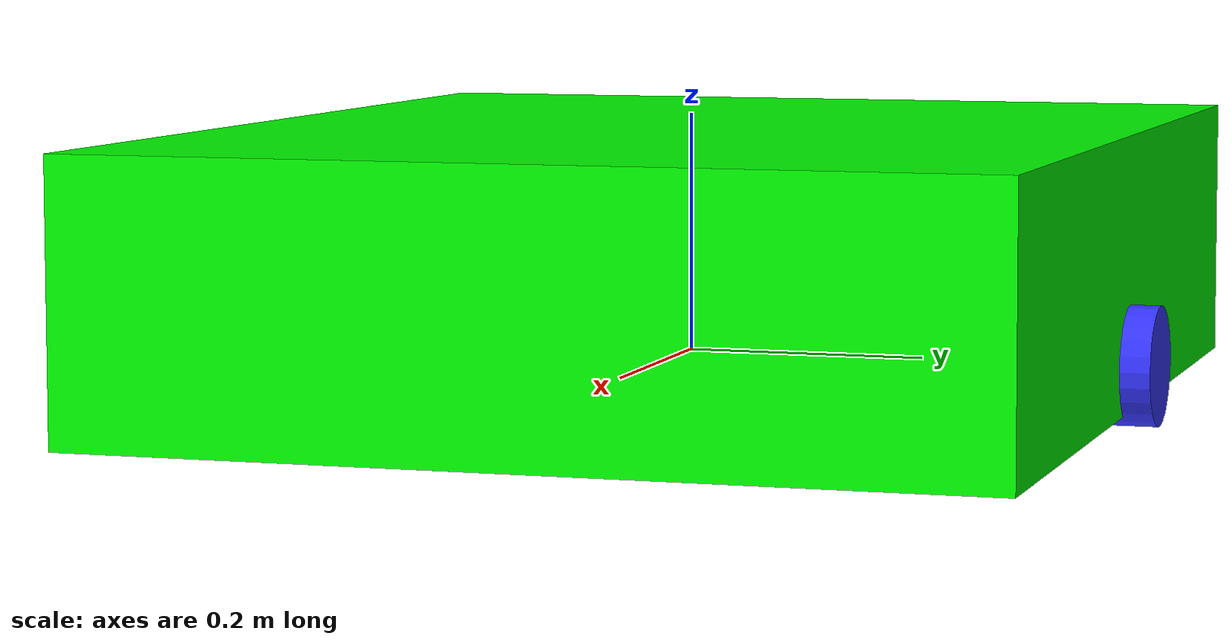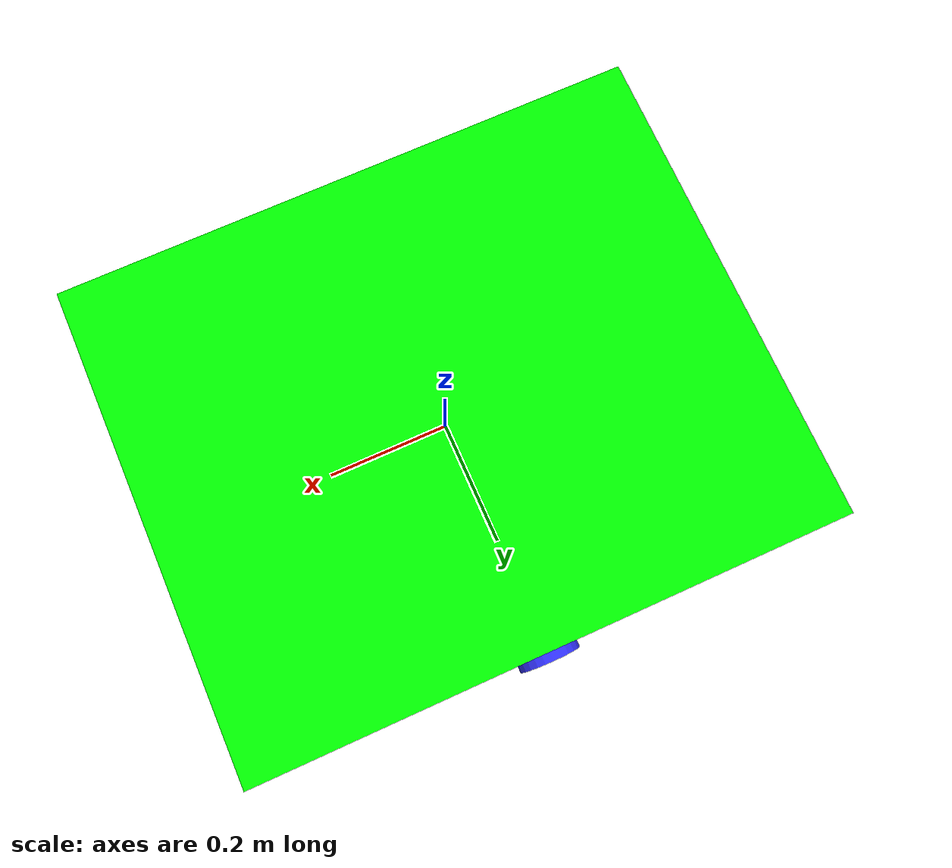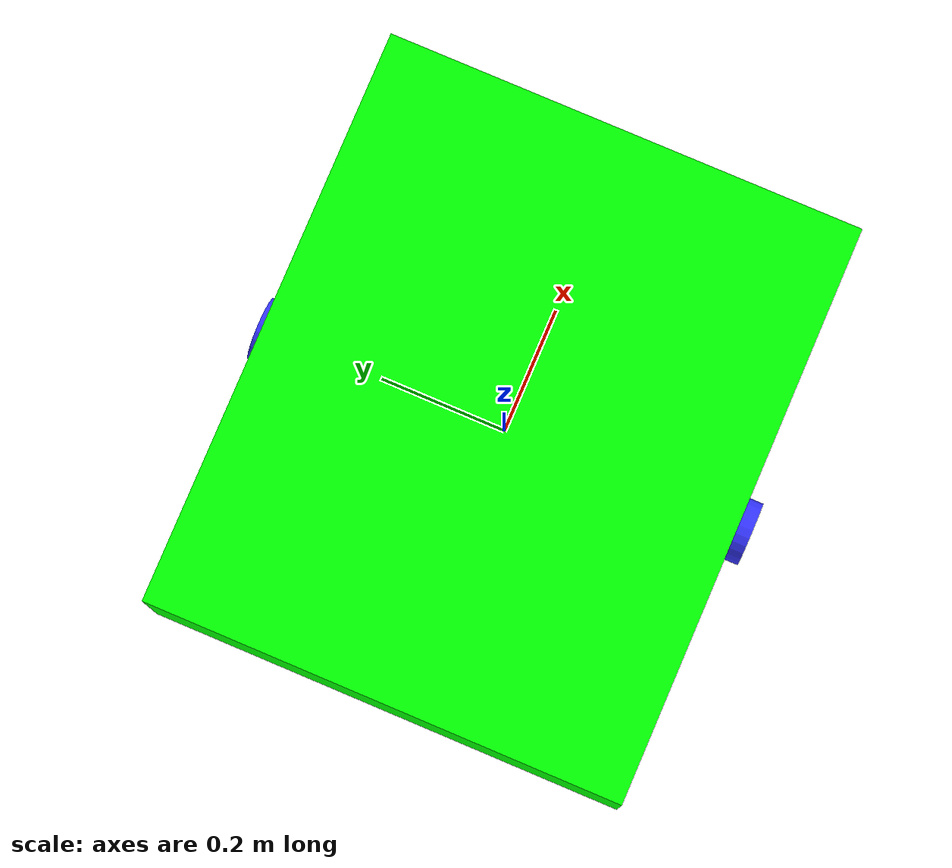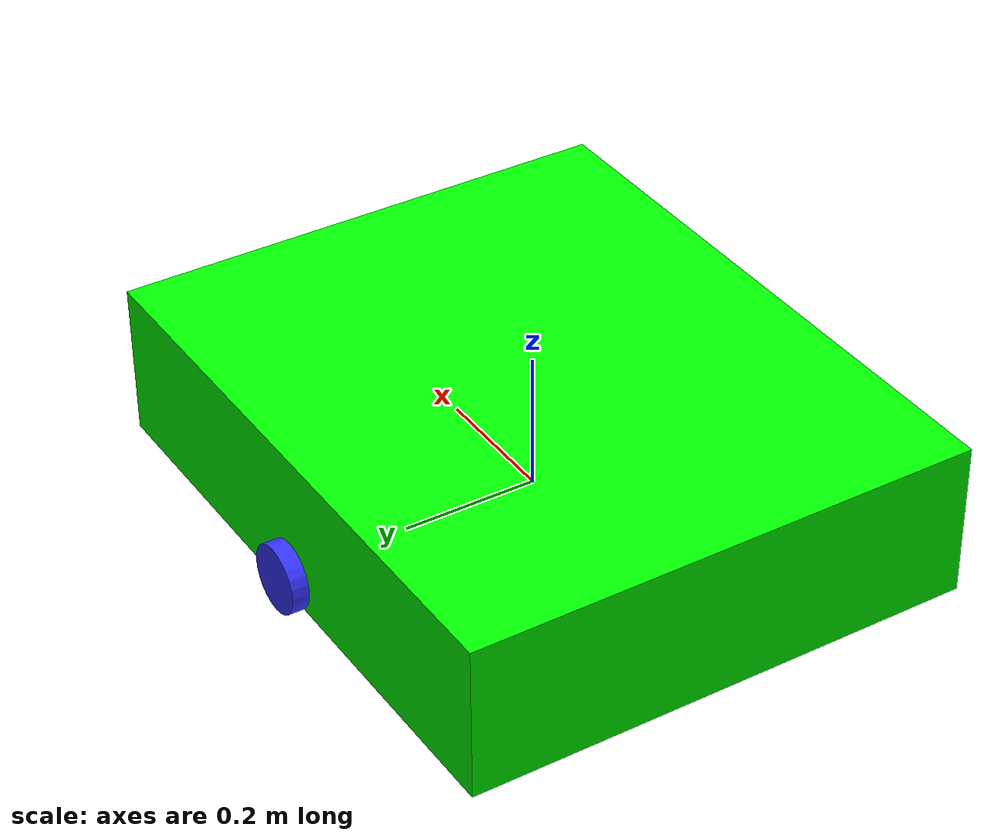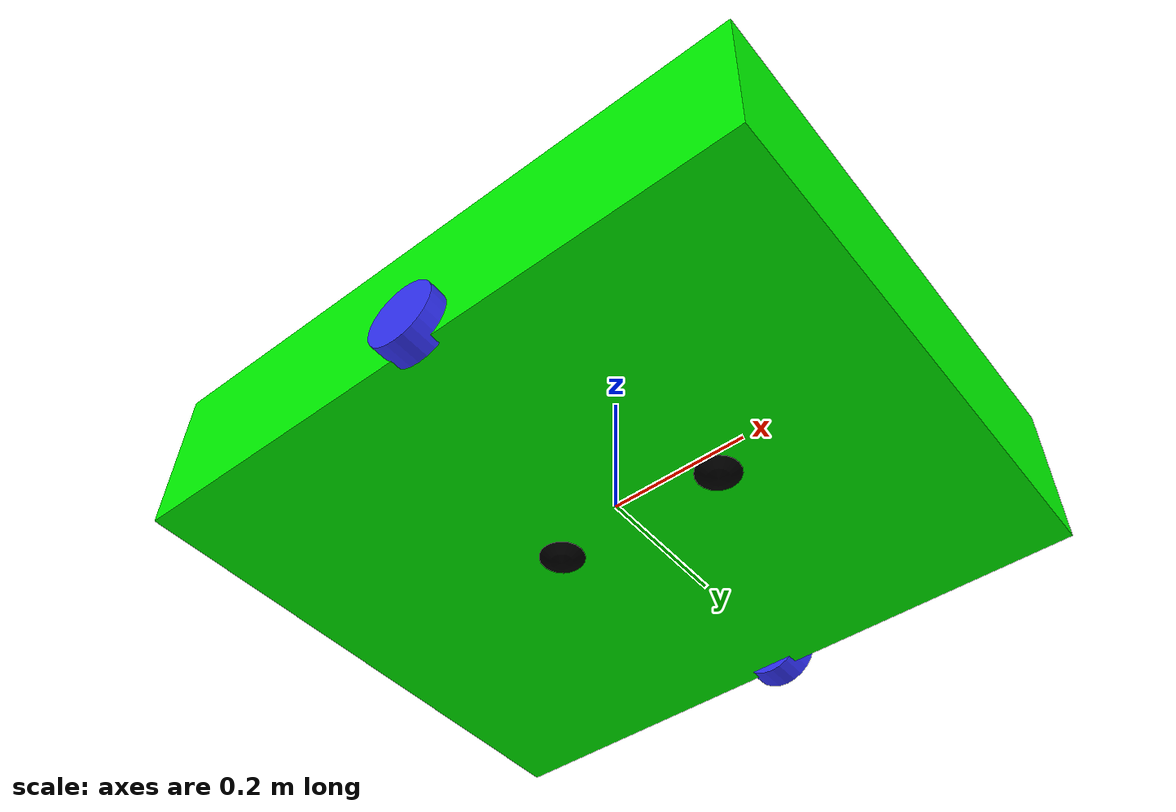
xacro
<?xml version="1.0"?>
<robot xmlns:xacro="http://www.ros.org/wiki/xacro" >

    <xacro:include filename="inertial_macros.xacro"/>

    <material name="white">
        <color rgba="1 1 1 1" />
    </material>

    <material name="orange">
        <color rgba="1 0.3 0.1 1"/>
    </material>

    <material name="blue">
        <color rgba="0.2 0.2 1 1"/>
    </material>

    <material name="black">
        <color rgba="0 0 0 1"/>
    </material>

    <material name="red">
        <color rgba="1 0 0 1"/>
    </material>

    <material name="green">
        <color rgba="0 1 0 1"/>
    </material>

    <!-- BASE LINK -->

    <link name="base_link">

    </link>

    <link name="base_footprint"/>
    <joint name="base_joint" type="fixed">
    <parent link="base_link"/>
    <child link ="base_footprint"/>
    <origin xyz="0 0 0" rpy="0 0 0"/>
    </joint>

    <!-- CHASSIS LINK -->

    <joint name="chassis_joint" type="fixed">
        <parent link="base_link"/>
        <child link="chassis"/>
        <origin xyz="-0.15 0 0"/>
    </joint>

    <link name="chassis">
        <visual>
            <origin xyz="0.15 0 0.075"/>
            <geometry>
                <box size="0.91 0.75 0.228"/>
            </geometry>
            <material name="green"/>
        </visual>
        <collision>
            <origin xyz="0.15 0 0.075"/>
            <geometry>
                <box size="0.91 0.75 0.228"/>
            </geometry>
        </collision>
        <xacro:inertial_box mass="0.5" x="0.3" y="0.3" z="0.15">
            <origin xyz="0.15 0 0.075" rpy="0 0 0"/>
        </xacro:inertial_box>
    </link>

    <gazebo reference="chassis">
        <material>Gazebo/White</material>
    </gazebo>

    <!-- LEFT WHEEL LINK -->

    <joint name="left_wheel_joint" type="continuous">
        <parent link="base_link"/>
        <child link="left_wheel"/>
        <origin xyz="0 0.380 0" rpy="-${pi/2} 0 0" />
        <axis xyz="0 0 1"/>
    </joint>

    <link name="left_wheel">
        <visual>
            <geometry>
                <cylinder radius="0.05" length="0.04"/>
            </geometry>
            <material name="blue"/>
        </visual>
        <collision>
            <geometry>
                <cylinder radius="0.05" length="0.04"/>
            </geometry>
        </collision>
        <xacro:inertial_cylinder mass="0.1" length="0.04" radius="0.05">
            <origin xyz="0 0 0" rpy="0 0 0"/>
        </xacro:inertial_cylinder>
    </link>

    <gazebo reference="left_wheel">
        <material>Gazebo/Blue</material>
    </gazebo>

    <!-- RIGHT WHEEL LINK -->

    <joint name="right_wheel_joint" type="continuous">
        <parent link="base_link"/>
        <child link="right_wheel"/>
        <origin xyz="0 -0.380 0" rpy="${pi/2} 0 0" />
        <axis xyz="0 0 -1"/>
    </joint>

    <link name="right_wheel">
        <visual>
            <geometry>
                <cylinder radius="0.05" length="0.04"/>
            </geometry>
            <material name="blue"/>
        </visual>
        <collision>
            <geometry>
                <cylinder radius="0.05" length="0.04"/>
            </geometry>
        </collision>
        <xacro:inertial_cylinder mass="0.1" length="0.04" radius="0.05">
            <origin xyz="0 0 0" rpy="0 0 0"/>
        </xacro:inertial_cylinder>
    </link>

    <gazebo reference="right_wheel">
        <material>Gazebo/Blue</material>
    </gazebo>

    <!-- CASTER WHEEL LINK -->

    <joint name="front_caster_wheel_joint" type="fixed">
        <parent link="chassis"/>
        <child link="front_caster_wheel"/>
        <origin xyz="0.31 0 0"/>
    </joint>

    <link name="front_caster_wheel">
        <visual>
            <geometry>
                <sphere radius="0.05"/>
            </geometry>
            <material name="black"/>
        </visual>
        <collision>
            <geometry>
                <sphere radius="0.05"/>
            </geometry>
        </collision>
        <xacro:inertial_sphere mass="0.1" radius="0.05">
            <origin xyz="0 0 0" rpy="0 0 0"/>
        </xacro:inertial_sphere>
    </link>

    <gazebo reference="front_caster_wheel">
        <material>Gazebo/Black</material>
        <mu1 value="0.001"/>
        <mu2 value="0.001"/>
    </gazebo>

    <!-- MIRROR REAR CASTER WHEEL LINK -->
    <joint name="mirror_rear_caster_wheel_joint" type="fixed">
        <parent link="chassis"/>
        <child link="mirror_rear_caster_wheel"/>
        <origin xyz="0.06 0 0"/> <!-- Mirrored origin -->
    </joint>

    <link name="mirror_rear_caster_wheel">
        <visual>
            <geometry>
                <sphere radius="0.05"/>
            </geometry>
            <material name="black"/>
        </visual>
        <collision>
            <geometry>
                <sphere radius="0.05"/>
            </geometry>
        </collision>
        <xacro:inertial_sphere mass="0.1" radius="0.05">
            <origin xyz="0 0 0" rpy="0 0 0"/>
        </xacro:inertial_sphere>
    </link>

    <gazebo reference="mirror_rear_caster_wheel">
        <material>Gazebo/Black</material>
        <mu1 value="0.001"/>
        <mu2 value="0.001"/>
    </gazebo>

</robot>
